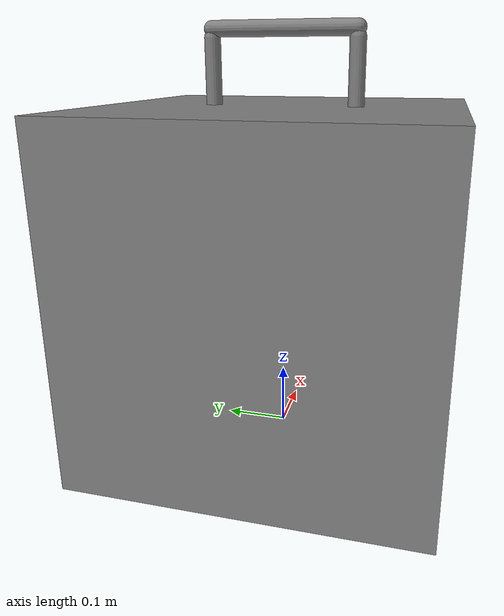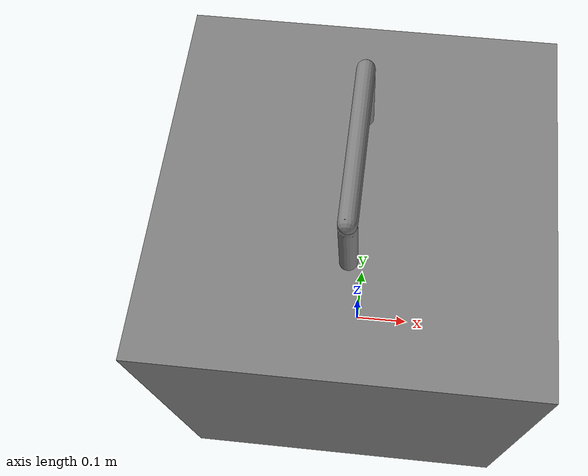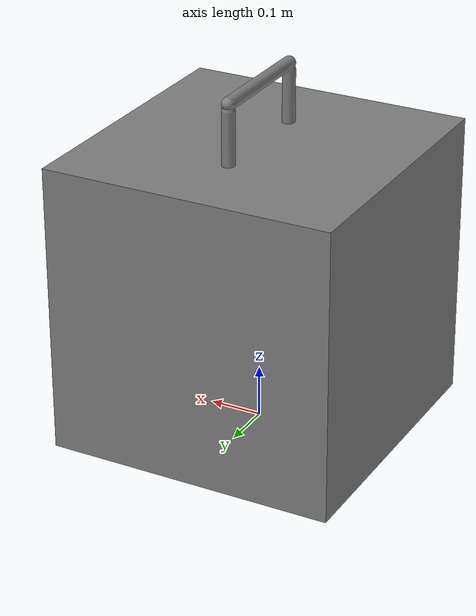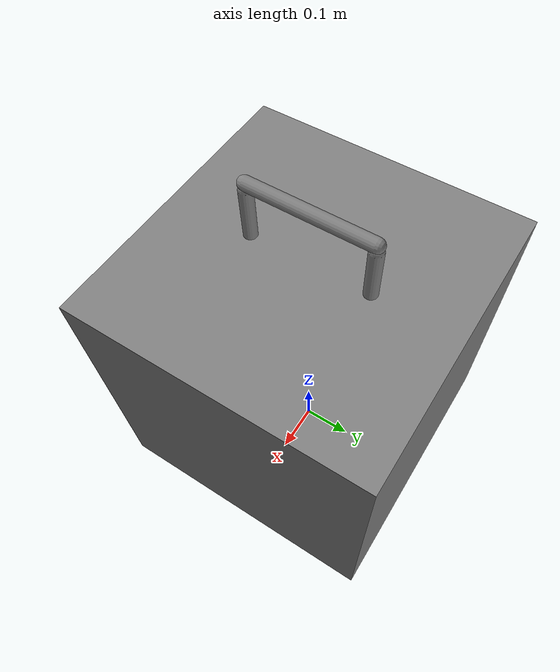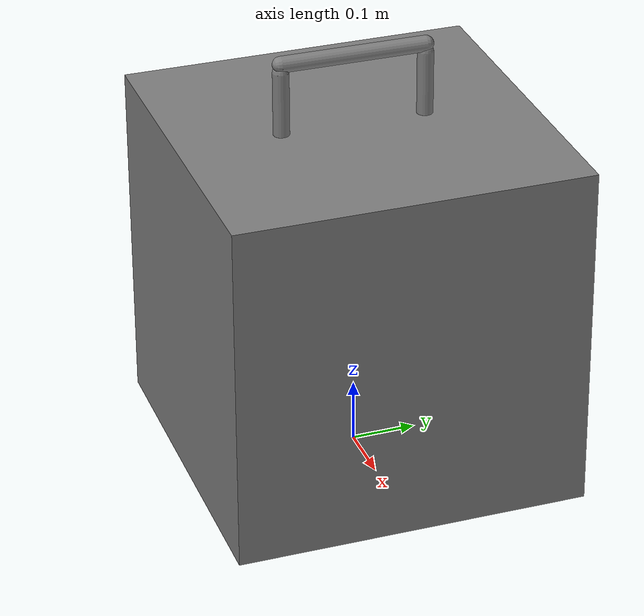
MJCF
<mujoco model="drake_box_with_handle">
<!-- Copyright (c) 2023 Robotics and AI Institute LLC dba RAI Institute. All rights reserved. -->
  <compiler angle="radian" />
  <default class="corner_contact">
    <geom type="sphere" size="1e-7" friction="0.5"/>
  </default>
  <worldbody>
    <body name="object" pos="0 0 0.275">
      <joint name="object_joint" type="free"/>
      <inertial pos="0 0 0" mass="1.72" diaginertia="0.01 0.01 0.01"/>

      <geom name="c1" pos="0.275 0.275 0.275" class="corner_contact"/>
      <geom name="c2" pos="-0.275 0.275 0.275" class="corner_contact"/>
      <geom name="c3" pos="0.275 -0.275 0.275" class="corner_contact"/>
      <geom name="c4" pos="-0.275 -0.275 0.275" class="corner_contact"/>
      <geom name="c5" pos="0.275 0.275 -0.275" class="corner_contact"/>
      <geom name="c6" pos="-0.275 0.275 -0.275" class="corner_contact"/>
      <geom name="c7" pos="0.275 -0.275 -0.275" class="corner_contact"/>
      <geom name="c8" pos="-0.275 -0.275 -0.275" class="corner_contact"/>
      <geom name="box_contact" type="box" size="0.275 0.275 0.275"/>

      <geom name="handle_left" type="capsule" size="0.0125 0.05" pos="0 0.1125 0.325"/>
      <geom name="handle_right" type="capsule" size="0.0125 0.05" pos="0 -0.1125 0.325"/>
      <geom name="handle_top" type="capsule" size="0.0125 0.1125" pos="0 0 0.3875" euler="1.57 0 0"/>
    </body>
  </worldbody>
</mujoco>
